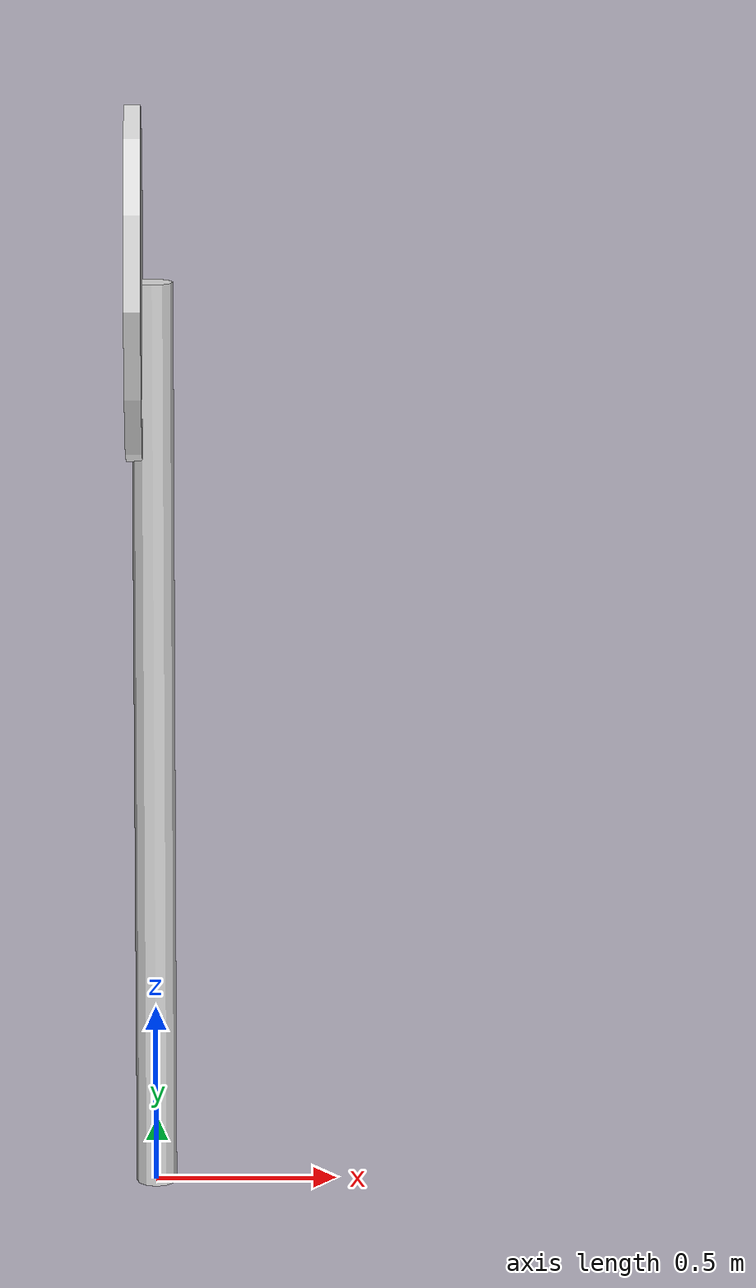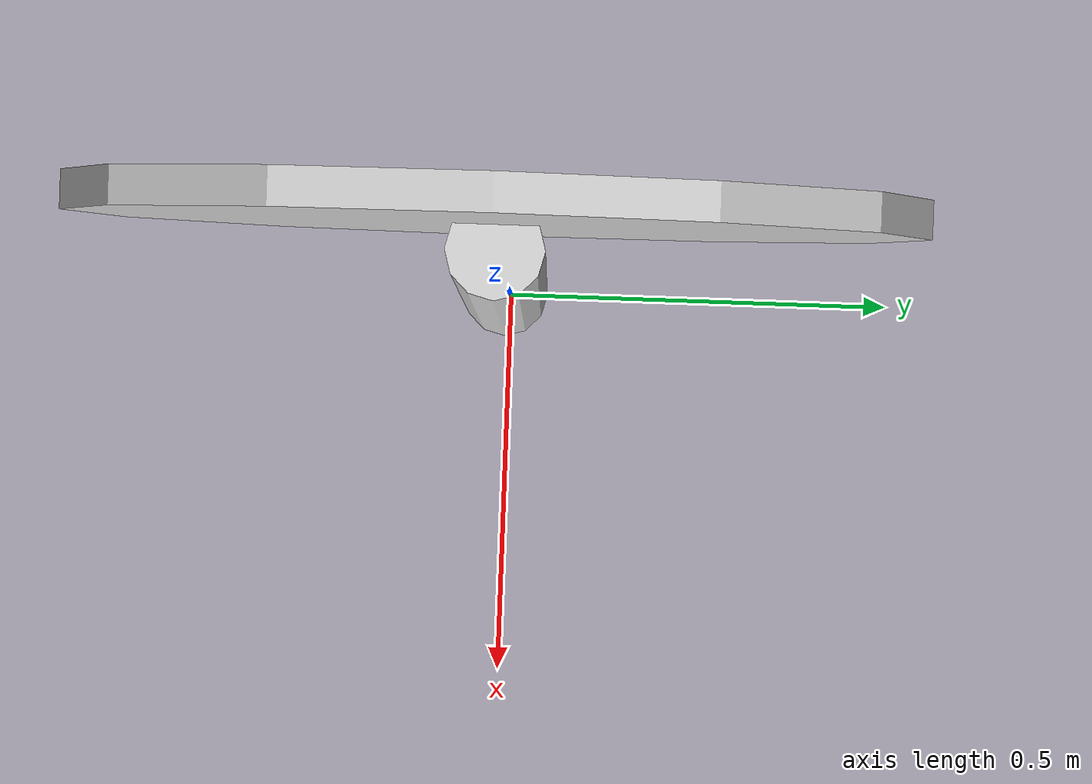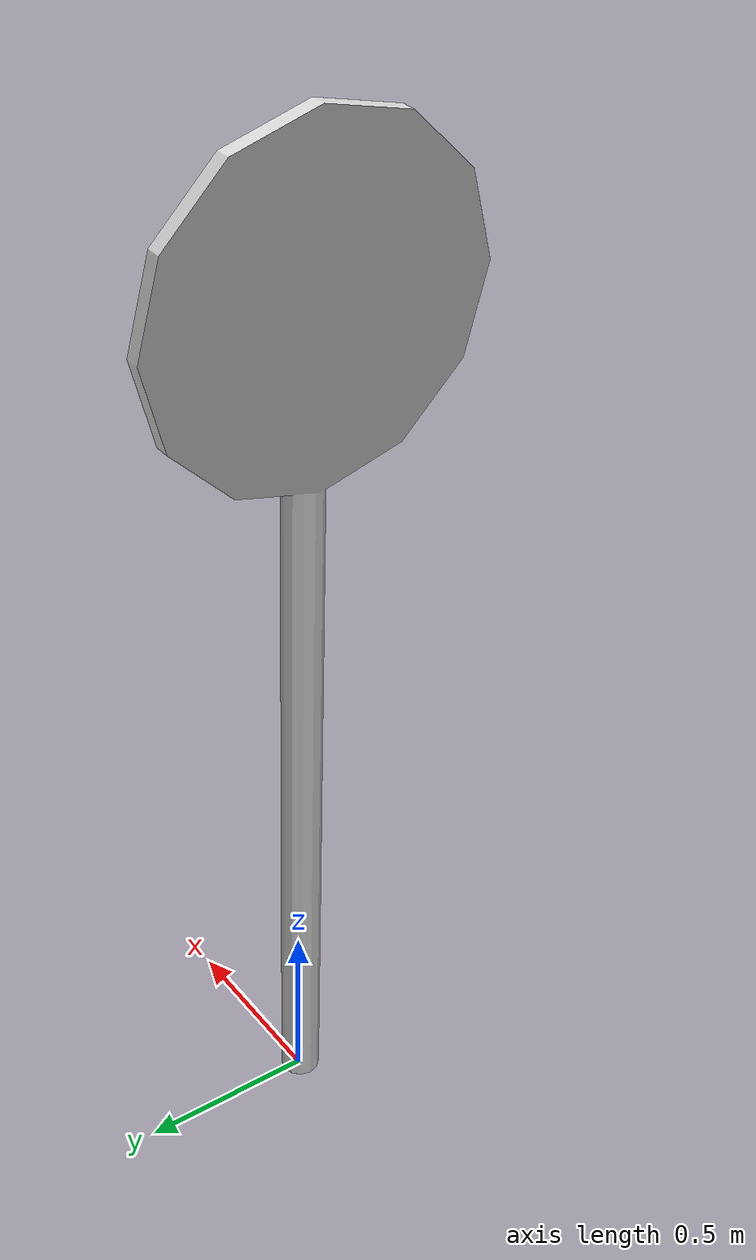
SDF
<?xml version='1.0'?>
<sdf version='1.6'>
  <model name='speed_limit_80'>
    <link name='link_1'>
         <visual name='visual'>
        <pose frame=''>0 0 0 0 -0 0</pose>
        <geometry>
          <mesh>
            <uri>model://speed_limit_80/meshes/speed_limit_80.dae</uri>
            <scale>2.0 2.0 2.0</scale>
          </mesh>
        </geometry>
        <cast_shadows>0</cast_shadows>
        <transparency>0</transparency>
      </visual>
      <collision name='collision'>
        <laser_retro>0</laser_retro>
        <max_contacts>10</max_contacts>
        <pose frame=''>0 0 0 0 -0 0</pose>
        <geometry>
          <mesh>
            <uri>model://speed_limit_80/meshes/speed_limit_80.dae</uri>
            <scale>2.0 2.0 2.0</scale>
          </mesh>
        </geometry>
     </collision>
    </link>

    <static>1</static>
    <allow_auto_disable>1</allow_auto_disable>
  </model>

</sdf>
